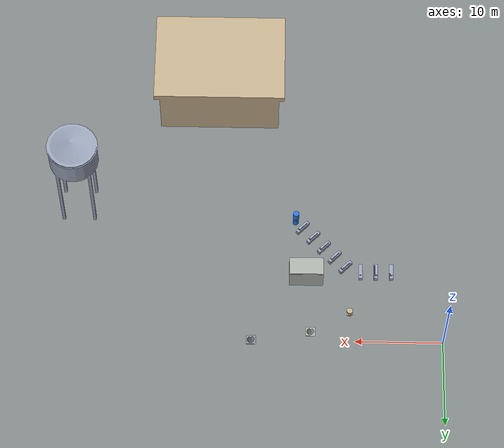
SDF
<sdf version="1.9">
 <world name="default">
  <model name="ground_plane">
   <static>true</static>
   <link name="link">
    <collision name="collision">
     <geometry><plane><normal>0 0 1</normal><size>160 140</size></plane></geometry>
     <surface><friction><ode><mu>1.0</mu><mu2>1.0</mu2></ode></friction></surface>
    </collision>
    <visual name="visual">
     <geometry><plane><normal>0 0 1</normal><size>160 140</size></plane></geometry>
     <material><diffuse>0.50 0.52 0.52 1</diffuse><ambient>0.50 0.52 0.52 1</ambient></material>
    </visual>
   </link>
  </model>
  <model name="Construction Cone_2">
   <static>true</static>
   <link name="link">
    <visual name="visual">
     <geometry>
      <mesh>
       <scale>10 10 10</scale>
       <uri>file:///home/k/clb_ws_jazzy/src/zebrat/gazebo_models/construction_cone/meshes/construction_cone.dae</uri>
      </mesh>
     </geometry>
     <material><diffuse>0.55 0.58 0.62 1</diffuse><ambient>0.55 0.58 0.62 1</ambient></material>
    </visual>
    <inertial>
     <inertia><ixx>1</ixx><ixy>0</ixy><ixz>0</ixz><iyy>1</iyy><iyz>0</iyz><izz>1</izz></inertia>
     <mass>1</mass>
    </inertial>
    <collision name="simple_collision">
     <pose>0 0 0.45 0 0 0</pose>
     <geometry><cylinder><radius>0.45</radius><length>0.9</length></cylinder></geometry>
     <surface><friction><ode><mu>1.0</mu><mu2>1.0</mu2></ode></friction></surface>
    </collision>
   </link>
   <pose>21.8285 -0.029515 0 0 -0 0</pose>
  </model>
  <model name="Construction Cone_3">
   <static>true</static>
   <link name="link">
    <visual name="visual">
     <geometry>
      <mesh>
       <scale>10 10 10</scale>
       <uri>file:///home/k/clb_ws_jazzy/src/zebrat/gazebo_models/construction_cone/meshes/construction_cone.dae</uri>
      </mesh>
     </geometry>
     <material><diffuse>0.66 0.68 0.66 1</diffuse><ambient>0.66 0.68 0.66 1</ambient></material>
    </visual>
    <inertial>
     <inertia><ixx>1</ixx><ixy>0</ixy><ixz>0</ixz><iyy>1</iyy><iyz>0</iyz><izz>1</izz></inertia>
     <mass>1</mass>
    </inertial>
    <collision name="simple_collision">
     <pose>0 0 0.45 0 0 0</pose>
     <geometry><cylinder><radius>0.45</radius><length>0.9</length></cylinder></geometry>
     <surface><friction><ode><mu>1.0</mu><mu2>1.0</mu2></ode></friction></surface>
    </collision>
   </link>
   <pose>15.0573 -1.13526 0 0 -0 0</pose>
  </model>
  <model name="Construction Barrel">
   <static>true</static>
   <link name="link">
    <inertial>
     <pose>0 0 0.4 0 -0 0</pose>
     <mass>500</mass>
     <inertia><ixx>51.2096</ixx><iyy>51.2096</iyy><izz>25</izz><ixy>0</ixy><ixz>0</ixz><iyz>0</iyz></inertia>
    </inertial>
    <visual name="visual">
     <geometry>
      <mesh>
       <uri>file:///home/k/clb_ws_jazzy/src/zebrat/gazebo_models/construction_barrel/meshes/construction_barrel.dae</uri>
      </mesh>
     </geometry>
     <material><diffuse>0.76 0.68 0.55 1</diffuse><ambient>0.76 0.68 0.55 1</ambient></material>
    </visual>
    <collision name="simple_collision">
     <pose>0 0 0.5 0 0 0</pose>
     <geometry><cylinder><radius>0.5</radius><length>1.0</length></cylinder></geometry>
     <surface><friction><ode><mu>1.0</mu><mu2>1.0</mu2></ode></friction></surface>
    </collision>
   </link>
   <pose>10.5984 -3.45338 0 0 -0 0</pose>
  </model>
  <model name="drc_practice_angled_barrier_45">
   <static>true</static>
   <static>1</static>
   <link name="one_link">
    <visual name="visual">
     <geometry>
      <mesh>
       <uri>file:///home/k/clb_ws_jazzy/src/zebrat/gazebo_models/drc_practice_orange_jersey_barrier/meshes/jersey_barrier.dae</uri>
      </mesh>
     </geometry>
     <material><diffuse>0.60 0.64 0.72 1</diffuse><ambient>0.60 0.64 0.72 1</ambient></material>
    </visual>
    <pose>0 0 0 0 0 -1.5707</pose>
    <collision name="simple_collision">
     <pose>0 0 0.6 0 0 0</pose>
     <geometry><box><size>10.0 4.0 1.2</size></box></geometry>
     <surface><friction><ode><mu>1.0</mu><mu2>1.0</mu2></ode></friction></surface>
    </collision>
   </link>
   <static>1</static>
   <link name="two_link">
    <visual name="visual">
     <geometry>
      <mesh>
       <uri>file:///home/k/clb_ws_jazzy/src/zebrat/gazebo_models/drc_practice_white_jersey_barrier/meshes/jersey_barrier.dae</uri>
      </mesh>
     </geometry>
     <material><diffuse>0.60 0.64 0.72 1</diffuse><ambient>0.60 0.64 0.72 1</ambient></material>
    </visual>
    <pose>1.7646 -0.008563 0 0 0 -1.5707</pose>
   </link>
   <static>1</static>
   <link name="three_link">
    <visual name="visual">
     <geometry>
      <mesh>
       <uri>file:///home/k/clb_ws_jazzy/src/zebrat/gazebo_models/drc_practice_orange_jersey_barrier/meshes/jersey_barrier.dae</uri>
      </mesh>
     </geometry>
     <material><diffuse>0.60 0.64 0.72 1</diffuse><ambient>0.60 0.64 0.72 1</ambient></material>
    </visual>
    <pose>3.52922 -0.016171 0 0 0 -1.5707</pose>
   </link>
   <static>1</static>
   <link name="four_link">
    <visual name="visual">
     <geometry>
      <mesh>
       <uri>file:///home/k/clb_ws_jazzy/src/zebrat/gazebo_models/drc_practice_white_jersey_barrier/meshes/jersey_barrier.dae</uri>
      </mesh>
     </geometry>
     <material><diffuse>0.60 0.64 0.72 1</diffuse><ambient>0.60 0.64 0.72 1</ambient></material>
    </visual>
    <pose>5.2559 -0.59667 0 0 0 -2.3562</pose>
   </link>
   <static>1</static>
   <link name="five_link">
    <visual name="visual">
     <geometry>
      <mesh>
       <uri>file:///home/k/clb_ws_jazzy/src/zebrat/gazebo_models/drc_practice_orange_jersey_barrier/meshes/jersey_barrier.dae</uri>
      </mesh>
     </geometry>
     <material><diffuse>0.60 0.64 0.72 1</diffuse><ambient>0.60 0.64 0.72 1</ambient></material>
    </visual>
    <pose>6.49818 -1.85004 0 0 0 -2.3562</pose>
   </link>
   <static>1</static>
   <link name="six_link">
    <visual name="visual">
     <geometry>
      <mesh>
       <uri>file:///home/k/clb_ws_jazzy/src/zebrat/gazebo_models/drc_practice_white_jersey_barrier/meshes/jersey_barrier.dae</uri>
      </mesh>
     </geometry>
     <material><diffuse>0.60 0.64 0.72 1</diffuse><ambient>0.60 0.64 0.72 1</ambient></material>
    </visual>
    <pose>7.74031 -3.10261 0 0 0 -2.3562</pose>
   </link>
   <static>1</static>
   <link name="seven_link">
    <visual name="visual">
     <geometry>
      <mesh>
       <uri>file:///home/k/clb_ws_jazzy/src/zebrat/gazebo_models/drc_practice_orange_jersey_barrier/meshes/jersey_barrier.dae</uri>
      </mesh>
     </geometry>
     <material><diffuse>0.60 0.64 0.72 1</diffuse><ambient>0.60 0.64 0.72 1</ambient></material>
    </visual>
    <pose>8.98256 -4.3561 0 0 0 -2.3562</pose>
   </link>
   <static>1</static>
   <link name="eight_link">
    <visual name="visual">
     <geometry>
      <mesh>
       <uri>file:///home/k/clb_ws_jazzy/src/zebrat/gazebo_models/drc_practice_white_jersey_barrier/meshes/jersey_barrier.dae</uri>
      </mesh>
     </geometry>
     <material><diffuse>0.60 0.64 0.72 1</diffuse><ambient>0.60 0.64 0.72 1</ambient></material>
    </visual>
    <pose>10.2248 -5.60978 0 0 0 -2.3562</pose>
   </link>
   <static>1</static>
   <link name="nine_link">
    <visual name="visual">
     <pose>0 0 0.7 0 -0 0</pose>
     <geometry><cylinder><radius>0.34</radius><length>1.4</length></cylinder></geometry>
     <material><ambient>0.16 0.46 0.92 1</ambient><diffuse>0.16 0.46 0.92 1</diffuse></material>
    </visual>
    <collision name="collision">
     <pose>0 0 0.7 0 -0 0</pose>
     <geometry><cylinder><radius>0.34</radius><length>1.4</length></cylinder></geometry>
    </collision>
    <pose>11.0288 -6.44203 0 0 -0 0</pose>
   </link>
   <static>1</static>
   <link name="ten_link">
    <visual name="visual">
     <pose>0 0 0.7 0 -0 0</pose>
     <geometry><cylinder><radius>0.34</radius><length>1.4</length></cylinder></geometry>
     <material><ambient>0.16 0.46 0.92 1</ambient><diffuse>0.16 0.46 0.92 1</diffuse></material>
    </visual>
    <collision name="collision">
     <pose>0 0 0.7 0 -0 0</pose>
     <geometry><cylinder><radius>0.34</radius><length>1.4</length></cylinder></geometry>
    </collision>
    <pose>11.0288 -6.44203 0.866 0 -0 0</pose>
   </link>
   <pose>5.78081 -8.65182 0 0 -0 0</pose>
  </model>
  <model name="Dumpster">
   <static>true</static>
   <link name="link">
    <visual name="visual">
     <geometry>
      <mesh>
       <scale>1.5 1.5 1.5</scale>
       <uri>file:///home/k/clb_ws_jazzy/src/zebrat/gazebo_models/dumpster/meshes/dumpster.dae</uri>
      </mesh>
     </geometry>
     <material><diffuse>0.66 0.68 0.66 1</diffuse><ambient>0.66 0.68 0.66 1</ambient></material>
    </visual>
    <inertial>
     <inertia><ixx>1</ixx><ixy>0</ixy><ixz>0</ixz><iyy>1</iyy><iyz>0</iyz><izz>1</izz></inertia>
     <mass>1</mass>
    </inertial>
    <collision name="simple_collision">
     <pose>0 0 0.9 0 0 0</pose>
     <geometry><box><size>3.0 2.0 1.8</size></box></geometry>
     <surface><friction><ode><mu>1.0</mu><mu2>1.0</mu2></ode></friction></surface>
    </collision>
   </link>
   <pose>15.592 -8.04024 0 0 -0 0</pose>
  </model>
  <model name="Fast Food">
   <static>true</static>
   <link name="link">
    <pose>0 0 3.15931 0 -0 0</pose>
    <visual name="visual">
     <geometry>
      <mesh>
       <scale>3 3 2</scale>
       <uri>file:///home/k/clb_ws_jazzy/src/zebrat/gazebo_models/fast_food/meshes/fast_food.dae</uri>
      </mesh>
     </geometry>
     <material><diffuse>0.76 0.68 0.55 1</diffuse><ambient>0.76 0.68 0.55 1</ambient></material>
    </visual>
    <collision name="simple_collision">
     <pose>0 0 2.5 0 0 0</pose>
     <geometry><box><size>12.0 10.0 5.0</size></box></geometry>
     <surface><friction><ode><mu>1.0</mu><mu2>1.0</mu2></ode></friction></surface>
    </collision>
   </link>
   <pose>25.909 -30.7683 0 0 -0 0</pose>
  </model>
  <model name="water_tower">
   <static>true</static>
   <link name="link">
    <visual name="visual">
     <geometry>
      <mesh>
       <uri>file:///home/k/clb_ws_jazzy/src/zebrat/gazebo_models/water_tower/meshes/water_tower.dae</uri>
      </mesh>
     </geometry>
     <material><diffuse>0.60 0.64 0.72 1</diffuse><ambient>0.60 0.64 0.72 1</ambient></material>
    </visual>
    <collision name="simple_collision">
     <pose>0 0 6.0 0 0 0</pose>
     <geometry><box><size>6.0 6.0 12.0</size></box></geometry>
     <surface><friction><ode><mu>1.0</mu><mu2>1.0</mu2></ode></friction></surface>
    </collision>
   </link>
   <pose>42.0912 -17.0398 0 0 -0 0</pose>
  </model>
 </world>
</sdf>
